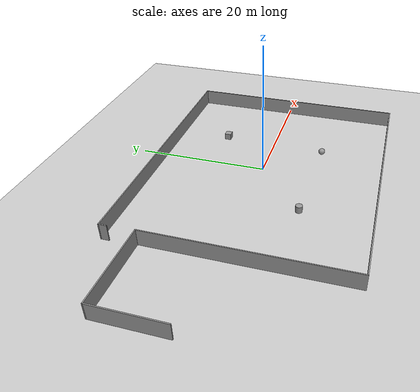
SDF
<sdf version="1.6">
 <world name="default">
  <plugin name="ros_link_attacher_plugin" filename="libgazebo_ros_link_attacher.so"/>
  <light name="sun" type="directional">
   <pose>0 0 10 0 -0 0</pose>
   <diffuse>0.8 0.8 0.8 1</diffuse>
   <specular>0.2 0.2 0.2 1</specular>
   <attenuation>
    <range>1000</range>
    <constant>0.9</constant>
    <linear>0.01</linear>
    <quadratic>0.001</quadratic>
   </attenuation>
   <direction>-0.5 0.1 -0.9</direction>
  </light>
  <model name="ground_plane">
   <static>1</static>
   <link name="link">
    <collision name="collision">
     <geometry><plane><normal>0 0 1</normal><size>100 100</size></plane></geometry>
     <surface><friction><ode><mu>100</mu><mu2>50</mu2></ode></friction></surface>
    </collision>
    <visual name="visual">
     <cast_shadows>0</cast_shadows>
     <geometry><plane><normal>0 0 1</normal><size>100 100</size></plane></geometry>
     <material>
      <script><uri>file://media/materials/scripts/gazebo.material</uri><name>Gazebo/Grey</name></script>
     </material>
    </visual>
   </link>
  </model>
  <gravity>0 0 -9.8</gravity>
  <magnetic_field>6e-06 2.3e-05 -4.2e-05</magnetic_field>
  <atmosphere type="adiabatic"/>
  <physics name="default_physics" default="0" type="ode">
   <max_step_size>0.001</max_step_size>
   <real_time_factor>1</real_time_factor>
   <real_time_update_rate>1000</real_time_update_rate>
  </physics>
  <scene><ambient>0.4 0.4 0.4 1</ambient><background>0.7 0.7 0.7 1</background><shadows>1</shadows></scene>
  <audio><device>default</device></audio>
  <spherical_coordinates>
   <surface_model>EARTH_WGS84</surface_model>
   <latitude_deg>0</latitude_deg>
   <longitude_deg>0</longitude_deg>
   <elevation>0</elevation>
   <heading_deg>0</heading_deg>
  </spherical_coordinates>
  <model name="Untitled">
   <pose>-6.82549 -0.8969 0 0 -0 0</pose>
   <link name="Wall_0">
    <collision name="Wall_0_Collision">
     <geometry><box><size>29 0.15 2.5</size></box></geometry>
     <pose>0 0 1.25 0 -0 0</pose>
    </collision>
    <visual name="Wall_0_Visual">
     <pose>0 0 1.25 0 -0 0</pose>
     <geometry><box><size>29 0.15 2.5</size></box></geometry>
     <material>
      <script><uri>file://media/materials/scripts/gazebo.material</uri><name>Gazebo/Grey</name></script>
      <ambient>1 1 1 1</ambient>
     </material>
     <meta><layer>0</layer></meta>
    </visual>
    <pose>-13.75 -2.5 0 0 -0 -1.5708</pose>
   </link>
   <link name="Wall_1">
    <collision name="Wall_1_Collision">
     <geometry><box><size>39.75 0.15 2.5</size></box></geometry>
     <pose>0 0 1.25 0 -0 0</pose>
    </collision>
    <visual name="Wall_1_Visual">
     <pose>0 0 1.25 0 -0 0</pose>
     <geometry><box><size>39.75 0.15 2.5</size></box></geometry>
     <material>
      <script><uri>file://media/materials/scripts/gazebo.material</uri><name>Gazebo/Grey</name></script>
      <ambient>1 1 1 1</ambient>
     </material>
     <meta><layer>0</layer></meta>
    </visual>
    <pose>6.05 -16.925 0 0 -0 0</pose>
   </link>
   <link name="Wall_2">
    <collision name="Wall_2_Collision">
     <geometry><box><size>34 0.15 2.5</size></box></geometry>
     <pose>0 0 1.25 0 -0 0</pose>
    </collision>
    <visual name="Wall_2_Visual">
     <pose>0 0 1.25 0 -0 0</pose>
     <geometry><box><size>34 0.15 2.5</size></box></geometry>
     <material>
      <script><uri>file://media/materials/scripts/gazebo.material</uri><name>Gazebo/Grey</name></script>
      <ambient>1 1 1 1</ambient>
     </material>
     <meta><layer>0</layer></meta>
    </visual>
    <pose>25.85 -0 0 0 -0 1.5708</pose>
   </link>
   <link name="Wall_3">
    <collision name="Wall_3_Collision">
     <geometry><box><size>40 0.15 2.5</size></box></geometry>
     <pose>0 0 1.25 0 -0 0</pose>
    </collision>
    <visual name="Wall_3_Visual">
     <pose>0 0 1.25 0 -0 0</pose>
     <geometry><box><size>40 0.15 2.5</size></box></geometry>
     <material>
      <script><uri>file://media/materials/scripts/gazebo.material</uri><name>Gazebo/Grey</name></script>
      <ambient>1 1 1 1</ambient>
     </material>
     <meta><layer>0</layer></meta>
    </visual>
    <pose>5.925 16.925 0 0 -0 3.14159</pose>
   </link>
   <link name="Wall_4">
    <collision name="Wall_4_Collision">
     <geometry><box><size>1.25 0.15 2.5</size></box></geometry>
     <pose>0 0 1.25 0 -0 0</pose>
    </collision>
    <visual name="Wall_4_Visual">
     <pose>0 0 1.25 0 -0 0</pose>
     <geometry><box><size>1.25 0.15 2.5</size></box></geometry>
     <material>
      <script><uri>file://media/materials/scripts/gazebo.material</uri><name>Gazebo/Grey</name></script>
      <ambient>1 1 1 1</ambient>
     </material>
     <meta><layer>0</layer></meta>
    </visual>
    <pose>-14 16.375 0 0 -0 -1.5708</pose>
   </link>
   <link name="Wall_6">
    <collision name="Wall_6_Collision">
     <geometry><box><size>12.25 0.15 2.5</size></box></geometry>
     <pose>0 0 1.25 0 -0 0</pose>
    </collision>
    <visual name="Wall_6_Visual">
     <pose>0 0 1.25 0 -0 0</pose>
     <geometry><box><size>12.25 0.15 2.5</size></box></geometry>
     <material>
      <script><uri>file://media/materials/scripts/gazebo.material</uri><name>Gazebo/Grey</name></script>
      <ambient>1 1 1 1</ambient>
     </material>
     <meta><layer>0</layer></meta>
    </visual>
    <pose>-19.8 11.925 0 0 -0 3.14159</pose>
   </link>
   <link name="Wall_7">
    <collision name="Wall_7_Collision">
     <geometry><box><size>10.25 0.15 2.5</size></box></geometry>
     <pose>0 0 1.25 0 -0 0</pose>
    </collision>
    <visual name="Wall_7_Visual">
     <pose>0 0 1.25 0 -0 0</pose>
     <geometry><box><size>10.25 0.15 2.5</size></box></geometry>
     <material>
      <script><uri>file://media/materials/scripts/gazebo.material</uri><name>Gazebo/Grey</name></script>
      <ambient>1 1 1 1</ambient>
     </material>
     <meta><layer>0</layer></meta>
    </visual>
    <pose>-25.85 6.875 0 0 -0 -1.5708</pose>
   </link>
   <static>1</static>
  </model>
  <model name="unit_cylinder">
   <pose>-8.61639 -7.45356 0.5 0 -0 0</pose>
   <link name="link">
    <inertial>
     <mass>1</mass>
     <inertia><ixx>0.145833</ixx><ixy>0</ixy><ixz>0</ixz><iyy>0.145833</iyy><iyz>0</iyz><izz>0.125</izz></inertia>
    </inertial>
    <collision name="collision">
     <geometry><cylinder><radius>0.5</radius><length>1</length></cylinder></geometry>
    </collision>
    <visual name="visual">
     <geometry><cylinder><radius>0.5</radius><length>1</length></cylinder></geometry>
     <material>
      <script><name>Gazebo/Grey</name><uri>file://media/materials/scripts/gazebo.material</uri></script>
     </material>
    </visual>
   </link>
  </model>
  <model name="unit_sphere">
   <pose>6.71152 -8.05084 0.5 0 -0 0</pose>
   <link name="link">
    <inertial>
     <mass>1</mass>
     <inertia><ixx>0.1</ixx><ixy>0</ixy><ixz>0</ixz><iyy>0.1</iyy><iyz>0</iyz><izz>0.1</izz></inertia>
    </inertial>
    <collision name="collision"><geometry><sphere><radius>0.5</radius></sphere></geometry></collision>
    <visual name="visual">
     <geometry><sphere><radius>0.5</radius></sphere></geometry>
     <material>
      <script><name>Gazebo/Grey</name><uri>file://media/materials/scripts/gazebo.material</uri></script>
     </material>
    </visual>
   </link>
  </model>
  <model name="unit_box">
   <pose>7.58328 8.07529 0.5 0 -0 0</pose>
   <link name="link">
    <inertial>
     <mass>1</mass>
     <inertia>
      <ixx>0.166667</ixx>
      <ixy>0</ixy>
      <ixz>0</ixz>
      <iyy>0.166667</iyy>
      <iyz>0</iyz>
      <izz>0.166667</izz>
     </inertia>
    </inertial>
    <collision name="collision"><geometry><box><size>1 1 1</size></box></geometry></collision>
    <visual name="visual">
     <geometry><box><size>1 1 1</size></box></geometry>
     <material>
      <script><name>Gazebo/Grey</name><uri>file://media/materials/scripts/gazebo.material</uri></script>
     </material>
    </visual>
   </link>
  </model>
 </world>
</sdf>
